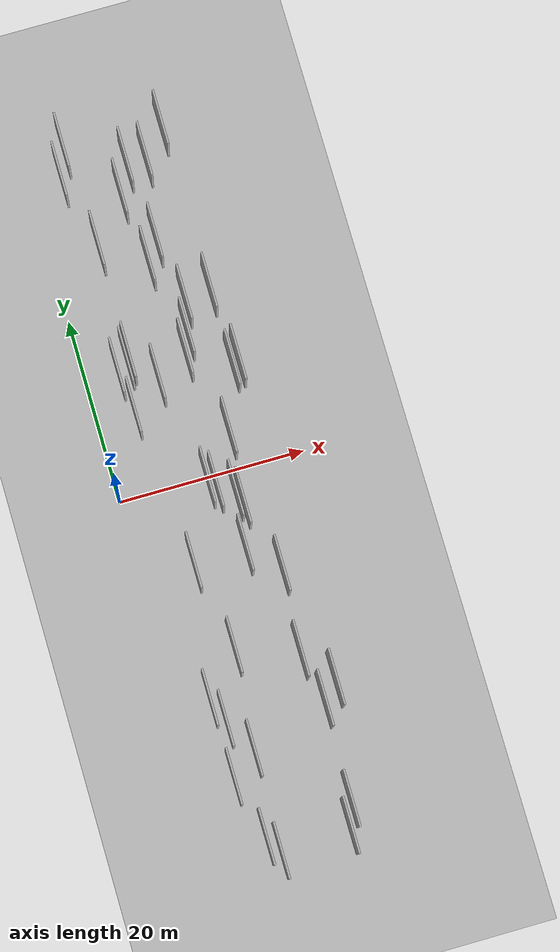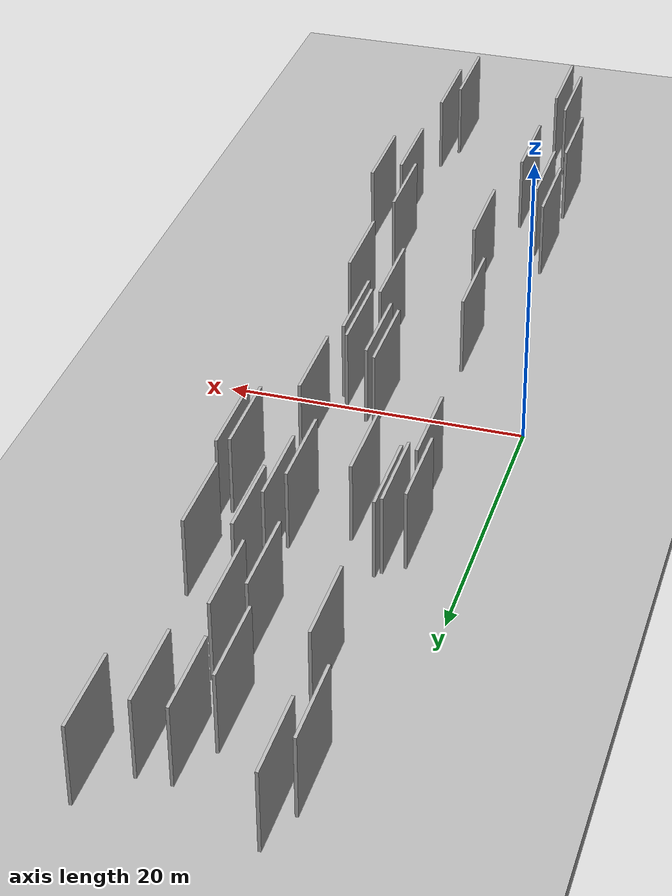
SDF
<?xml version="1.0" encoding="utf-8"?>

<sdf version="1.6">

   <world name="default">

      <gui fullscreen="0">

         <camera name="user_camera">

            <pose>-15 0 4.57585 0 0 0</pose>

            <view_controller>orbit</view_controller>

         </camera>

      </gui>

      <scene>

         <sky>

           <clouds>

             <speed>12</speed>

           </clouds>

         </sky>

         <ambient>0.4 0.4 0.4 1</ambient>

         <background>0.7 0.7 0.7 1</background>

         <shadows>1</shadows>

      </scene>

      <gravity>0 0 -9.8066</gravity>

      <magnetic_field>6e-06 2.3e-05 -4.2e-05</magnetic_field>

      <physics default="0" name="default_physics" type="ode">

         <ode>

            <solver>

               <type>quick</type>

               <iters>10</iters>

               <sor>1.0</sor>

               <use_dynamic_moi_rescaling>0</use_dynamic_moi_rescaling>

            </solver>

            <constraints>

               <cfm>0</cfm>

               <erp>0.2</erp>

               <contact_max_correcting_vel>100</contact_max_correcting_vel>

               <contact_surface_layer>0.001</contact_surface_layer>

            </constraints>

         </ode>

         <max_step_size>0.004</max_step_size>

         <real_time_factor>1</real_time_factor>

         <real_time_update_rate>250</real_time_update_rate>

      </physics>

      <light name="sun" type="directional">

         <cast_shadows>1</cast_shadows>

         <pose>0 0 10 0 0 0</pose>

         <diffuse>0.8 0.8 0.8 1</diffuse>

         <specular>0.2 0.2 0.2 1</specular>

         <attenuation>

            <range>1000</range>

            <constant>0.9</constant>

            <linear>0.01</linear>

            <quadratic>0.001</quadratic>

         </attenuation>

         <direction>-0.5 0.1 -0.9</direction>

      </light>

      <include>

         <name>ground_plane_1</name>

         <uri>model://HANNAS_ground_plane</uri>

         <pose>0 0 0  0 0 0</pose>

      </include>

      <include>

         <name>ground_plane_2</name>

         <uri>model://HANNAS_ground_plane</uri>

         <pose>100 0 0  0 0 0</pose>

      </include>

      <model name="HANNAS_wall_1">

         <static>1</static>

         <pose frame="">4.3245 -24.9638 0.0 0.000000 0.000000 1.570796</pose>

         <link name="link">

            <pose frame="">0 0 3.00 0 0 0</pose>

            <collision name="collision">

               <geometry>

                  <box>

                     <size>6.00 0.2 6.00</size>

                  </box>

               </geometry>

               <max_contacts>10</max_contacts>

               <surface>

                  <contact>

                     <ode/>

                  </contact>

                  <bounce/>

                  <friction>

                     <torsional>

                        <ode/>

                     </torsional>

                     <ode/>

                  </friction>

               </surface>

            </collision>

            <visual name="visual">

               <cast_shadows>0</cast_shadows>

               <geometry>

                  <box>

                     <size>6.00 0.2 6.00</size>

                  </box>

               </geometry>

               <material>

                  <script>

                     <uri>model://HANNAS_wall/materials/scripts</uri>

                     <uri>model://HANNAS_wall/materials/textures</uri>

                     <name>vrc/HANNAS_wall</name>

                  </script>

               </material>

            </visual>

            <self_collide>0</self_collide>

            <enable_wind>0</enable_wind>

            <kinematic>0</kinematic>

         </link>

      </model>

      <model name="HANNAS_wall_2">

         <static>1</static>

         <pose frame="">12.3497 18.5937 0.0 0.000000 0.000000 1.570796</pose>

         <link name="link">

            <pose frame="">0 0 3.00 0 0 0</pose>

            <collision name="collision">

               <geometry>

                  <box>

                     <size>6.00 0.2 6.00</size>

                  </box>

               </geometry>

               <max_contacts>10</max_contacts>

               <surface>

                  <contact>

                     <ode/>

                  </contact>

                  <bounce/>

                  <friction>

                     <torsional>

                        <ode/>

                     </torsional>

                     <ode/>

                  </friction>

               </surface>

            </collision>

            <visual name="visual">

               <cast_shadows>0</cast_shadows>

               <geometry>

                  <box>

                     <size>6.00 0.2 6.00</size>

                  </box>

               </geometry>

               <material>

                  <script>

                     <uri>model://HANNAS_wall/materials/scripts</uri>

                     <uri>model://HANNAS_wall/materials/textures</uri>

                     <name>vrc/HANNAS_wall</name>

                  </script>

               </material>

            </visual>

            <self_collide>0</self_collide>

            <enable_wind>0</enable_wind>

            <kinematic>0</kinematic>

         </link>

      </model>

      <model name="HANNAS_wall_3">

         <static>1</static>

         <pose frame="">11.8341 -2.5435 0.0 0.000000 0.000000 1.570796</pose>

         <link name="link">

            <pose frame="">0 0 3.00 0 0 0</pose>

            <collision name="collision">

               <geometry>

                  <box>

                     <size>6.00 0.2 6.00</size>

                  </box>

               </geometry>

               <max_contacts>10</max_contacts>

               <surface>

                  <contact>

                     <ode/>

                  </contact>

                  <bounce/>

                  <friction>

                     <torsional>

                        <ode/>

                     </torsional>

                     <ode/>

                  </friction>

               </surface>

            </collision>

            <visual name="visual">

               <cast_shadows>0</cast_shadows>

               <geometry>

                  <box>

                     <size>6.00 0.2 6.00</size>

                  </box>

               </geometry>

               <material>

                  <script>

                     <uri>model://HANNAS_wall/materials/scripts</uri>

                     <uri>model://HANNAS_wall/materials/textures</uri>

                     <name>vrc/HANNAS_wall</name>

                  </script>

               </material>

            </visual>

            <self_collide>0</self_collide>

            <enable_wind>0</enable_wind>

            <kinematic>0</kinematic>

         </link>

      </model>

      <model name="HANNAS_wall_4">

         <static>1</static>

         <pose frame="">7.4011 11.3173 0.0 0.000000 0.000000 1.570796</pose>

         <link name="link">

            <pose frame="">0 0 3.00 0 0 0</pose>

            <collision name="collision">

               <geometry>

                  <box>

                     <size>6.00 0.2 6.00</size>

                  </box>

               </geometry>

               <max_contacts>10</max_contacts>

               <surface>

                  <contact>

                     <ode/>

                  </contact>

                  <bounce/>

                  <friction>

                     <torsional>

                        <ode/>

                     </torsional>

                     <ode/>

                  </friction>

               </surface>

            </collision>

            <visual name="visual">

               <cast_shadows>0</cast_shadows>

               <geometry>

                  <box>

                     <size>6.00 0.2 6.00</size>

                  </box>

               </geometry>

               <material>

                  <script>

                     <uri>model://HANNAS_wall/materials/scripts</uri>

                     <uri>model://HANNAS_wall/materials/textures</uri>

                     <name>vrc/HANNAS_wall</name>

                  </script>

               </material>

            </visual>

            <self_collide>0</self_collide>

            <enable_wind>0</enable_wind>

            <kinematic>0</kinematic>

         </link>

      </model>

      <model name="HANNAS_wall_5">

         <static>1</static>

         <pose frame="">10.8684 13.0981 0.0 0.000000 0.000000 1.570796</pose>

         <link name="link">

            <pose frame="">0 0 3.00 0 0 0</pose>

            <collision name="collision">

               <geometry>

                  <box>

                     <size>6.00 0.2 6.00</size>

                  </box>

               </geometry>

               <max_contacts>10</max_contacts>

               <surface>

                  <contact>

                     <ode/>

                  </contact>

                  <bounce/>

                  <friction>

                     <torsional>

                        <ode/>

                     </torsional>

                     <ode/>

                  </friction>

               </surface>

            </collision>

            <visual name="visual">

               <cast_shadows>0</cast_shadows>

               <geometry>

                  <box>

                     <size>6.00 0.2 6.00</size>

                  </box>

               </geometry>

               <material>

                  <script>

                     <uri>model://HANNAS_wall/materials/scripts</uri>

                     <uri>model://HANNAS_wall/materials/textures</uri>

                     <name>vrc/HANNAS_wall</name>

                  </script>

               </material>

            </visual>

            <self_collide>0</self_collide>

            <enable_wind>0</enable_wind>

            <kinematic>0</kinematic>

         </link>

      </model>

      <model name="HANNAS_wall_6">

         <static>1</static>

         <pose frame="">4.7483 13.9222 0.0 0.000000 0.000000 1.570796</pose>

         <link name="link">

            <pose frame="">0 0 3.00 0 0 0</pose>

            <collision name="collision">

               <geometry>

                  <box>

                     <size>6.00 0.2 6.00</size>

                  </box>

               </geometry>

               <max_contacts>10</max_contacts>

               <surface>

                  <contact>

                     <ode/>

                  </contact>

                  <bounce/>

                  <friction>

                     <torsional>

                        <ode/>

                     </torsional>

                     <ode/>

                  </friction>

               </surface>

            </collision>

            <visual name="visual">

               <cast_shadows>0</cast_shadows>

               <geometry>

                  <box>

                     <size>6.00 0.2 6.00</size>

                  </box>

               </geometry>

               <material>

                  <script>

                     <uri>model://HANNAS_wall/materials/scripts</uri>

                     <uri>model://HANNAS_wall/materials/textures</uri>

                     <name>vrc/HANNAS_wall</name>

                  </script>

               </material>

            </visual>

            <self_collide>0</self_collide>

            <enable_wind>0</enable_wind>

            <kinematic>0</kinematic>

         </link>

      </model>

      <model name="HANNAS_wall_7">

         <static>1</static>

         <pose frame="">12.5244 34.4096 0.0 0.000000 0.000000 1.570796</pose>

         <link name="link">

            <pose frame="">0 0 3.00 0 0 0</pose>

            <collision name="collision">

               <geometry>

                  <box>

                     <size>6.00 0.2 6.00</size>

                  </box>

               </geometry>

               <max_contacts>10</max_contacts>

               <surface>

                  <contact>

                     <ode/>

                  </contact>

                  <bounce/>

                  <friction>

                     <torsional>

                        <ode/>

                     </torsional>

                     <ode/>

                  </friction>

               </surface>

            </collision>

            <visual name="visual">

               <cast_shadows>0</cast_shadows>

               <geometry>

                  <box>

                     <size>6.00 0.2 6.00</size>

                  </box>

               </geometry>

               <material>

                  <script>

                     <uri>model://HANNAS_wall/materials/scripts</uri>

                     <uri>model://HANNAS_wall/materials/textures</uri>

                     <name>vrc/HANNAS_wall</name>

                  </script>

               </material>

            </visual>

            <self_collide>0</self_collide>

            <enable_wind>0</enable_wind>

            <kinematic>0</kinematic>

         </link>

      </model>

      <model name="HANNAS_wall_8">

         <static>1</static>

         <pose frame="">14.6035 -25.7520 0.0 0.000000 0.000000 1.570796</pose>

         <link name="link">

            <pose frame="">0 0 3.00 0 0 0</pose>

            <collision name="collision">

               <geometry>

                  <box>

                     <size>6.00 0.2 6.00</size>

                  </box>

               </geometry>

               <max_contacts>10</max_contacts>

               <surface>

                  <contact>

                     <ode/>

                  </contact>

                  <bounce/>

                  <friction>

                     <torsional>

                        <ode/>

                     </torsional>

                     <ode/>

                  </friction>

               </surface>

            </collision>

            <visual name="visual">

               <cast_shadows>0</cast_shadows>

               <geometry>

                  <box>

                     <size>6.00 0.2 6.00</size>

                  </box>

               </geometry>

               <material>

                  <script>

                     <uri>model://HANNAS_wall/materials/scripts</uri>

                     <uri>model://HANNAS_wall/materials/textures</uri>

                     <name>vrc/HANNAS_wall</name>

                  </script>

               </material>

            </visual>

            <self_collide>0</self_collide>

            <enable_wind>0</enable_wind>

            <kinematic>0</kinematic>

         </link>

      </model>

      <model name="HANNAS_wall_9">

         <static>1</static>

         <pose frame="">16.2894 -24.0302 0.0 0.000000 0.000000 1.570796</pose>

         <link name="link">

            <pose frame="">0 0 3.00 0 0 0</pose>

            <collision name="collision">

               <geometry>

                  <box>

                     <size>6.00 0.2 6.00</size>

                  </box>

               </geometry>

               <max_contacts>10</max_contacts>

               <surface>

                  <contact>

                     <ode/>

                  </contact>

                  <bounce/>

                  <friction>

                     <torsional>

                        <ode/>

                     </torsional>

                     <ode/>

                  </friction>

               </surface>

            </collision>

            <visual name="visual">

               <cast_shadows>0</cast_shadows>

               <geometry>

                  <box>

                     <size>6.00 0.2 6.00</size>

                  </box>

               </geometry>

               <material>

                  <script>

                     <uri>model://HANNAS_wall/materials/scripts</uri>

                     <uri>model://HANNAS_wall/materials/textures</uri>

                     <name>vrc/HANNAS_wall</name>

                  </script>

               </material>

            </visual>

            <self_collide>0</self_collide>

            <enable_wind>0</enable_wind>

            <kinematic>0</kinematic>

         </link>

      </model>

      <model name="HANNAS_wall_10">

         <static>1</static>

         <pose frame="">6.0475 -39.3182 0.0 0.000000 0.000000 1.570796</pose>

         <link name="link">

            <pose frame="">0 0 3.00 0 0 0</pose>

            <collision name="collision">

               <geometry>

                  <box>

                     <size>6.00 0.2 6.00</size>

                  </box>

               </geometry>

               <max_contacts>10</max_contacts>

               <surface>

                  <contact>

                     <ode/>

                  </contact>

                  <bounce/>

                  <friction>

                     <torsional>

                        <ode/>

                     </torsional>

                     <ode/>

                  </friction>

               </surface>

            </collision>

            <visual name="visual">

               <cast_shadows>0</cast_shadows>

               <geometry>

                  <box>

                     <size>6.00 0.2 6.00</size>

                  </box>

               </geometry>

               <material>

                  <script>

                     <uri>model://HANNAS_wall/materials/scripts</uri>

                     <uri>model://HANNAS_wall/materials/textures</uri>

                     <name>vrc/HANNAS_wall</name>

                  </script>

               </material>

            </visual>

            <self_collide>0</self_collide>

            <enable_wind>0</enable_wind>

            <kinematic>0</kinematic>

         </link>

      </model>

      <model name="HANNAS_wall_11">

         <static>1</static>

         <pose frame="">7.2088 -18.0423 0.0 0.000000 0.000000 1.570796</pose>

         <link name="link">

            <pose frame="">0 0 3.00 0 0 0</pose>

            <collision name="collision">

               <geometry>

                  <box>

                     <size>6.00 0.2 6.00</size>

                  </box>

               </geometry>

               <max_contacts>10</max_contacts>

               <surface>

                  <contact>

                     <ode/>

                  </contact>

                  <bounce/>

                  <friction>

                     <torsional>

                        <ode/>

                     </torsional>

                     <ode/>

                  </friction>

               </surface>

            </collision>

            <visual name="visual">

               <cast_shadows>0</cast_shadows>

               <geometry>

                  <box>

                     <size>6.00 0.2 6.00</size>

                  </box>

               </geometry>

               <material>

                  <script>

                     <uri>model://HANNAS_wall/materials/scripts</uri>

                     <uri>model://HANNAS_wall/materials/textures</uri>

                     <name>vrc/HANNAS_wall</name>

                  </script>

               </material>

            </visual>

            <self_collide>0</self_collide>

            <enable_wind>0</enable_wind>

            <kinematic>0</kinematic>

         </link>

      </model>

      <model name="HANNAS_wall_12">

         <static>1</static>

         <pose frame="">11.2103 -8.2758 0.0 0.000000 0.000000 1.570796</pose>

         <link name="link">

            <pose frame="">0 0 3.00 0 0 0</pose>

            <collision name="collision">

               <geometry>

                  <box>

                     <size>6.00 0.2 6.00</size>

                  </box>

               </geometry>

               <max_contacts>10</max_contacts>

               <surface>

                  <contact>

                     <ode/>

                  </contact>

                  <bounce/>

                  <friction>

                     <torsional>

                        <ode/>

                     </torsional>

                     <ode/>

                  </friction>

               </surface>

            </collision>

            <visual name="visual">

               <cast_shadows>0</cast_shadows>

               <geometry>

                  <box>

                     <size>6.00 0.2 6.00</size>

                  </box>

               </geometry>

               <material>

                  <script>

                     <uri>model://HANNAS_wall/materials/scripts</uri>

                     <uri>model://HANNAS_wall/materials/textures</uri>

                     <name>vrc/HANNAS_wall</name>

                  </script>

               </material>

            </visual>

            <self_collide>0</self_collide>

            <enable_wind>0</enable_wind>

            <kinematic>0</kinematic>

         </link>

      </model>

      <model name="HANNAS_wall_13">

         <static>1</static>

         <pose frame="">5.6096 -8.5747 0.0 0.000000 0.000000 1.570796</pose>

         <link name="link">

            <pose frame="">0 0 3.00 0 0 0</pose>

            <collision name="collision">

               <geometry>

                  <box>

                     <size>6.00 0.2 6.00</size>

                  </box>

               </geometry>

               <max_contacts>10</max_contacts>

               <surface>

                  <contact>

                     <ode/>

                  </contact>

                  <bounce/>

                  <friction>

                     <torsional>

                        <ode/>

                     </torsional>

                     <ode/>

                  </friction>

               </surface>

            </collision>

            <visual name="visual">

               <cast_shadows>0</cast_shadows>

               <geometry>

                  <box>

                     <size>6.00 0.2 6.00</size>

                  </box>

               </geometry>

               <material>

                  <script>

                     <uri>model://HANNAS_wall/materials/scripts</uri>

                     <uri>model://HANNAS_wall/materials/textures</uri>

                     <name>vrc/HANNAS_wall</name>

                  </script>

               </material>

            </visual>

            <self_collide>0</self_collide>

            <enable_wind>0</enable_wind>

            <kinematic>0</kinematic>

         </link>

      </model>

      <model name="HANNAS_wall_14">

         <static>1</static>

         <pose frame="">5.1643 26.5844 0.0 0.000000 0.000000 1.570796</pose>

         <link name="link">

            <pose frame="">0 0 3.00 0 0 0</pose>

            <collision name="collision">

               <geometry>

                  <box>

                     <size>6.00 0.2 6.00</size>

                  </box>

               </geometry>

               <max_contacts>10</max_contacts>

               <surface>

                  <contact>

                     <ode/>

                  </contact>

                  <bounce/>

                  <friction>

                     <torsional>

                        <ode/>

                     </torsional>

                     <ode/>

                  </friction>

               </surface>

            </collision>

            <visual name="visual">

               <cast_shadows>0</cast_shadows>

               <geometry>

                  <box>

                     <size>6.00 0.2 6.00</size>

                  </box>

               </geometry>

               <material>

                  <script>

                     <uri>model://HANNAS_wall/materials/scripts</uri>

                     <uri>model://HANNAS_wall/materials/textures</uri>

                     <name>vrc/HANNAS_wall</name>

                  </script>

               </material>

            </visual>

            <self_collide>0</self_collide>

            <enable_wind>0</enable_wind>

            <kinematic>0</kinematic>

         </link>

      </model>

      <model name="HANNAS_wall_15">

         <static>1</static>

         <pose frame="">5.0965 14.3637 0.0 0.000000 0.000000 1.570796</pose>

         <link name="link">

            <pose frame="">0 0 3.00 0 0 0</pose>

            <collision name="collision">

               <geometry>

                  <box>

                     <size>6.00 0.2 6.00</size>

                  </box>

               </geometry>

               <max_contacts>10</max_contacts>

               <surface>

                  <contact>

                     <ode/>

                  </contact>

                  <bounce/>

                  <friction>

                     <torsional>

                        <ode/>

                     </torsional>

                     <ode/>

                  </friction>

               </surface>

            </collision>

            <visual name="visual">

               <cast_shadows>0</cast_shadows>

               <geometry>

                  <box>

                     <size>6.00 0.2 6.00</size>

                  </box>

               </geometry>

               <material>

                  <script>

                     <uri>model://HANNAS_wall/materials/scripts</uri>

                     <uri>model://HANNAS_wall/materials/textures</uri>

                     <name>vrc/HANNAS_wall</name>

                  </script>

               </material>

            </visual>

            <self_collide>0</self_collide>

            <enable_wind>0</enable_wind>

            <kinematic>0</kinematic>

         </link>

      </model>

      <model name="HANNAS_wall_16">

         <static>1</static>

         <pose frame="">13.5013 -38.8088 0.0 0.000000 0.000000 1.570796</pose>

         <link name="link">

            <pose frame="">0 0 3.00 0 0 0</pose>

            <collision name="collision">

               <geometry>

                  <box>

                     <size>6.00 0.2 6.00</size>

                  </box>

               </geometry>

               <max_contacts>10</max_contacts>

               <surface>

                  <contact>

                     <ode/>

                  </contact>

                  <bounce/>

                  <friction>

                     <torsional>

                        <ode/>

                     </torsional>

                     <ode/>

                  </friction>

               </surface>

            </collision>

            <visual name="visual">

               <cast_shadows>0</cast_shadows>

               <geometry>

                  <box>

                     <size>6.00 0.2 6.00</size>

                  </box>

               </geometry>

               <material>

                  <script>

                     <uri>model://HANNAS_wall/materials/scripts</uri>

                     <uri>model://HANNAS_wall/materials/textures</uri>

                     <name>vrc/HANNAS_wall</name>

                  </script>

               </material>

            </visual>

            <self_collide>0</self_collide>

            <enable_wind>0</enable_wind>

            <kinematic>0</kinematic>

         </link>

      </model>

      <model name="HANNAS_wall_17">

         <static>1</static>

         <pose frame="">4.9915 -37.5476 0.0 0.000000 0.000000 1.570796</pose>

         <link name="link">

            <pose frame="">0 0 3.00 0 0 0</pose>

            <collision name="collision">

               <geometry>

                  <box>

                     <size>6.00 0.2 6.00</size>

                  </box>

               </geometry>

               <max_contacts>10</max_contacts>

               <surface>

                  <contact>

                     <ode/>

                  </contact>

                  <bounce/>

                  <friction>

                     <torsional>

                        <ode/>

                     </torsional>

                     <ode/>

                  </friction>

               </surface>

            </collision>

            <visual name="visual">

               <cast_shadows>0</cast_shadows>

               <geometry>

                  <box>

                     <size>6.00 0.2 6.00</size>

                  </box>

               </geometry>

               <material>

                  <script>

                     <uri>model://HANNAS_wall/materials/scripts</uri>

                     <uri>model://HANNAS_wall/materials/textures</uri>

                     <name>vrc/HANNAS_wall</name>

                  </script>

               </material>

            </visual>

            <self_collide>0</self_collide>

            <enable_wind>0</enable_wind>

            <kinematic>0</kinematic>

         </link>

      </model>

      <model name="HANNAS_wall_18">

         <static>1</static>

         <pose frame="">14.3217 -36.2283 0.0 0.000000 0.000000 1.570796</pose>

         <link name="link">

            <pose frame="">0 0 3.00 0 0 0</pose>

            <collision name="collision">

               <geometry>

                  <box>

                     <size>6.00 0.2 6.00</size>

                  </box>

               </geometry>

               <max_contacts>10</max_contacts>

               <surface>

                  <contact>

                     <ode/>

                  </contact>

                  <bounce/>

                  <friction>

                     <torsional>

                        <ode/>

                     </torsional>

                     <ode/>

                  </friction>

               </surface>

            </collision>

            <visual name="visual">

               <cast_shadows>0</cast_shadows>

               <geometry>

                  <box>

                     <size>6.00 0.2 6.00</size>

                  </box>

               </geometry>

               <material>

                  <script>

                     <uri>model://HANNAS_wall/materials/scripts</uri>

                     <uri>model://HANNAS_wall/materials/textures</uri>

                     <name>vrc/HANNAS_wall</name>

                  </script>

               </material>

            </visual>

            <self_collide>0</self_collide>

            <enable_wind>0</enable_wind>

            <kinematic>0</kinematic>

         </link>

      </model>

      <model name="HANNAS_wall_19">

         <static>1</static>

         <pose frame="">12.3265 -3.5174 0.0 0.000000 0.000000 1.570796</pose>

         <link name="link">

            <pose frame="">0 0 3.00 0 0 0</pose>

            <collision name="collision">

               <geometry>

                  <box>

                     <size>6.00 0.2 6.00</size>

                  </box>

               </geometry>

               <max_contacts>10</max_contacts>

               <surface>

                  <contact>

                     <ode/>

                  </contact>

                  <bounce/>

                  <friction>

                     <torsional>

                        <ode/>

                     </torsional>

                     <ode/>

                  </friction>

               </surface>

            </collision>

            <visual name="visual">

               <cast_shadows>0</cast_shadows>

               <geometry>

                  <box>

                     <size>6.00 0.2 6.00</size>

                  </box>

               </geometry>

               <material>

                  <script>

                     <uri>model://HANNAS_wall/materials/scripts</uri>

                     <uri>model://HANNAS_wall/materials/textures</uri>

                     <name>vrc/HANNAS_wall</name>

                  </script>

               </material>

            </visual>

            <self_collide>0</self_collide>

            <enable_wind>0</enable_wind>

            <kinematic>0</kinematic>

         </link>

      </model>

      <model name="HANNAS_wall_20">

         <static>1</static>

         <pose frame="">14.2419 -11.3249 0.0 0.000000 0.000000 1.570796</pose>

         <link name="link">

            <pose frame="">0 0 3.00 0 0 0</pose>

            <collision name="collision">

               <geometry>

                  <box>

                     <size>6.00 0.2 6.00</size>

                  </box>

               </geometry>

               <max_contacts>10</max_contacts>

               <surface>

                  <contact>

                     <ode/>

                  </contact>

                  <bounce/>

                  <friction>

                     <torsional>

                        <ode/>

                     </torsional>

                     <ode/>

                  </friction>

               </surface>

            </collision>

            <visual name="visual">

               <cast_shadows>0</cast_shadows>

               <geometry>

                  <box>

                     <size>6.00 0.2 6.00</size>

                  </box>

               </geometry>

               <material>

                  <script>

                     <uri>model://HANNAS_wall/materials/scripts</uri>

                     <uri>model://HANNAS_wall/materials/textures</uri>

                     <name>vrc/HANNAS_wall</name>

                  </script>

               </material>

            </visual>

            <self_collide>0</self_collide>

            <enable_wind>0</enable_wind>

            <kinematic>0</kinematic>

         </link>

      </model>

      <model name="HANNAS_wall_21">

         <static>1</static>

         <pose frame="">3.3547 -22.5129 0.0 0.000000 0.000000 1.570796</pose>

         <link name="link">

            <pose frame="">0 0 3.00 0 0 0</pose>

            <collision name="collision">

               <geometry>

                  <box>

                     <size>6.00 0.2 6.00</size>

                  </box>

               </geometry>

               <max_contacts>10</max_contacts>

               <surface>

                  <contact>

                     <ode/>

                  </contact>

                  <bounce/>

                  <friction>

                     <torsional>

                        <ode/>

                     </torsional>

                     <ode/>

                  </friction>

               </surface>

            </collision>

            <visual name="visual">

               <cast_shadows>0</cast_shadows>

               <geometry>

                  <box>

                     <size>6.00 0.2 6.00</size>

                  </box>

               </geometry>

               <material>

                  <script>

                     <uri>model://HANNAS_wall/materials/scripts</uri>

                     <uri>model://HANNAS_wall/materials/textures</uri>

                     <name>vrc/HANNAS_wall</name>

                  </script>

               </material>

            </visual>

            <self_collide>0</self_collide>

            <enable_wind>0</enable_wind>

            <kinematic>0</kinematic>

         </link>

      </model>

      <model name="HANNAS_wall_22">

         <static>1</static>

         <pose frame="">12.9528 3.9137 0.0 0.000000 0.000000 1.570796</pose>

         <link name="link">

            <pose frame="">0 0 3.00 0 0 0</pose>

            <collision name="collision">

               <geometry>

                  <box>

                     <size>6.00 0.2 6.00</size>

                  </box>

               </geometry>

               <max_contacts>10</max_contacts>

               <surface>

                  <contact>

                     <ode/>

                  </contact>

                  <bounce/>

                  <friction>

                     <torsional>

                        <ode/>

                     </torsional>

                     <ode/>

                  </friction>

               </surface>

            </collision>

            <visual name="visual">

               <cast_shadows>0</cast_shadows>

               <geometry>

                  <box>

                     <size>6.00 0.2 6.00</size>

                  </box>

               </geometry>

               <material>

                  <script>

                     <uri>model://HANNAS_wall/materials/scripts</uri>

                     <uri>model://HANNAS_wall/materials/textures</uri>

                     <name>vrc/HANNAS_wall</name>

                  </script>

               </material>

            </visual>

            <self_collide>0</self_collide>

            <enable_wind>0</enable_wind>

            <kinematic>0</kinematic>

         </link>

      </model>

      <model name="HANNAS_wall_23">

         <static>1</static>

         <pose frame="">15.1757 19.1069 0.0 0.000000 0.000000 1.570796</pose>

         <link name="link">

            <pose frame="">0 0 3.00 0 0 0</pose>

            <collision name="collision">

               <geometry>

                  <box>

                     <size>6.00 0.2 6.00</size>

                  </box>

               </geometry>

               <max_contacts>10</max_contacts>

               <surface>

                  <contact>

                     <ode/>

                  </contact>

                  <bounce/>

                  <friction>

                     <torsional>

                        <ode/>

                     </torsional>

                     <ode/>

                  </friction>

               </surface>

            </collision>

            <visual name="visual">

               <cast_shadows>0</cast_shadows>

               <geometry>

                  <box>

                     <size>6.00 0.2 6.00</size>

                  </box>

               </geometry>

               <material>

                  <script>

                     <uri>model://HANNAS_wall/materials/scripts</uri>

                     <uri>model://HANNAS_wall/materials/textures</uri>

                     <name>vrc/HANNAS_wall</name>

                  </script>

               </material>

            </visual>

            <self_collide>0</self_collide>

            <enable_wind>0</enable_wind>

            <kinematic>0</kinematic>

         </link>

      </model>

      <model name="HANNAS_wall_24">

         <static>1</static>

         <pose frame="">4.4452 37.7147 0.0 0.000000 0.000000 1.570796</pose>

         <link name="link">

            <pose frame="">0 0 3.00 0 0 0</pose>

            <collision name="collision">

               <geometry>

                  <box>

                     <size>6.00 0.2 6.00</size>

                  </box>

               </geometry>

               <max_contacts>10</max_contacts>

               <surface>

                  <contact>

                     <ode/>

                  </contact>

                  <bounce/>

                  <friction>

                     <torsional>

                        <ode/>

                     </torsional>

                     <ode/>

                  </friction>

               </surface>

            </collision>

            <visual name="visual">

               <cast_shadows>0</cast_shadows>

               <geometry>

                  <box>

                     <size>6.00 0.2 6.00</size>

                  </box>

               </geometry>

               <material>

                  <script>

                     <uri>model://HANNAS_wall/materials/scripts</uri>

                     <uri>model://HANNAS_wall/materials/textures</uri>

                     <name>vrc/HANNAS_wall</name>

                  </script>

               </material>

            </visual>

            <self_collide>0</self_collide>

            <enable_wind>0</enable_wind>

            <kinematic>0</kinematic>

         </link>

      </model>

      <model name="HANNAS_wall_25">

         <static>1</static>

         <pose frame="">3.4861 -30.8448 0.0 0.000000 0.000000 1.570796</pose>

         <link name="link">

            <pose frame="">0 0 3.00 0 0 0</pose>

            <collision name="collision">

               <geometry>

                  <box>

                     <size>6.00 0.2 6.00</size>

                  </box>

               </geometry>

               <max_contacts>10</max_contacts>

               <surface>

                  <contact>

                     <ode/>

                  </contact>

                  <bounce/>

                  <friction>

                     <torsional>

                        <ode/>

                     </torsional>

                     <ode/>

                  </friction>

               </surface>

            </collision>

            <visual name="visual">

               <cast_shadows>0</cast_shadows>

               <geometry>

                  <box>

                     <size>6.00 0.2 6.00</size>

                  </box>

               </geometry>

               <material>

                  <script>

                     <uri>model://HANNAS_wall/materials/scripts</uri>

                     <uri>model://HANNAS_wall/materials/textures</uri>

                     <name>vrc/HANNAS_wall</name>

                  </script>

               </material>

            </visual>

            <self_collide>0</self_collide>

            <enable_wind>0</enable_wind>

            <kinematic>0</kinematic>

         </link>

      </model>

      <model name="HANNAS_wall_26">

         <static>1</static>

         <pose frame="">4.0728 8.6260 0.0 0.000000 0.000000 1.570796</pose>

         <link name="link">

            <pose frame="">0 0 3.00 0 0 0</pose>

            <collision name="collision">

               <geometry>

                  <box>

                     <size>6.00 0.2 6.00</size>

                  </box>

               </geometry>

               <max_contacts>10</max_contacts>

               <surface>

                  <contact>

                     <ode/>

                  </contact>

                  <bounce/>

                  <friction>

                     <torsional>

                        <ode/>

                     </torsional>

                     <ode/>

                  </friction>

               </surface>

            </collision>

            <visual name="visual">

               <cast_shadows>0</cast_shadows>

               <geometry>

                  <box>

                     <size>6.00 0.2 6.00</size>

                  </box>

               </geometry>

               <material>

                  <script>

                     <uri>model://HANNAS_wall/materials/scripts</uri>

                     <uri>model://HANNAS_wall/materials/textures</uri>

                     <name>vrc/HANNAS_wall</name>

                  </script>

               </material>

            </visual>

            <self_collide>0</self_collide>

            <enable_wind>0</enable_wind>

            <kinematic>0</kinematic>

         </link>

      </model>

      <model name="HANNAS_wall_27">

         <static>1</static>

         <pose frame="">6.2685 -28.6391 0.0 0.000000 0.000000 1.570796</pose>

         <link name="link">

            <pose frame="">0 0 3.00 0 0 0</pose>

            <collision name="collision">

               <geometry>

                  <box>

                     <size>6.00 0.2 6.00</size>

                  </box>

               </geometry>

               <max_contacts>10</max_contacts>

               <surface>

                  <contact>

                     <ode/>

                  </contact>

                  <bounce/>

                  <friction>

                     <torsional>

                        <ode/>

                     </torsional>

                     <ode/>

                  </friction>

               </surface>

            </collision>

            <visual name="visual">

               <cast_shadows>0</cast_shadows>

               <geometry>

                  <box>

                     <size>6.00 0.2 6.00</size>

                  </box>

               </geometry>

               <material>

                  <script>

                     <uri>model://HANNAS_wall/materials/scripts</uri>

                     <uri>model://HANNAS_wall/materials/textures</uri>

                     <name>vrc/HANNAS_wall</name>

                  </script>

               </material>

            </visual>

            <self_collide>0</self_collide>

            <enable_wind>0</enable_wind>

            <kinematic>0</kinematic>

         </link>

      </model>

      <model name="HANNAS_wall_28">

         <static>1</static>

         <pose frame="">10.4224 34.4241 0.0 0.000000 0.000000 1.570796</pose>

         <link name="link">

            <pose frame="">0 0 3.00 0 0 0</pose>

            <collision name="collision">

               <geometry>

                  <box>

                     <size>6.00 0.2 6.00</size>

                  </box>

               </geometry>

               <max_contacts>10</max_contacts>

               <surface>

                  <contact>

                     <ode/>

                  </contact>

                  <bounce/>

                  <friction>

                     <torsional>

                        <ode/>

                     </torsional>

                     <ode/>

                  </friction>

               </surface>

            </collision>

            <visual name="visual">

               <cast_shadows>0</cast_shadows>

               <geometry>

                  <box>

                     <size>6.00 0.2 6.00</size>

                  </box>

               </geometry>

               <material>

                  <script>

                     <uri>model://HANNAS_wall/materials/scripts</uri>

                     <uri>model://HANNAS_wall/materials/textures</uri>

                     <name>vrc/HANNAS_wall</name>

                  </script>

               </material>

            </visual>

            <self_collide>0</self_collide>

            <enable_wind>0</enable_wind>

            <kinematic>0</kinematic>

         </link>

      </model>

      <model name="HANNAS_wall_29">

         <static>1</static>

         <pose frame="">11.6366 15.1914 0.0 0.000000 0.000000 1.570796</pose>

         <link name="link">

            <pose frame="">0 0 3.00 0 0 0</pose>

            <collision name="collision">

               <geometry>

                  <box>

                     <size>6.00 0.2 6.00</size>

                  </box>

               </geometry>

               <max_contacts>10</max_contacts>

               <surface>

                  <contact>

                     <ode/>

                  </contact>

                  <bounce/>

                  <friction>

                     <torsional>

                        <ode/>

                     </torsional>

                     <ode/>

                  </friction>

               </surface>

            </collision>

            <visual name="visual">

               <cast_shadows>0</cast_shadows>

               <geometry>

                  <box>

                     <size>6.00 0.2 6.00</size>

                  </box>

               </geometry>

               <material>

                  <script>

                     <uri>model://HANNAS_wall/materials/scripts</uri>

                     <uri>model://HANNAS_wall/materials/textures</uri>

                     <name>vrc/HANNAS_wall</name>

                  </script>

               </material>

            </visual>

            <self_collide>0</self_collide>

            <enable_wind>0</enable_wind>

            <kinematic>0</kinematic>

         </link>

      </model>

      <model name="HANNAS_wall_30">

         <static>1</static>

         <pose frame="">3.5231 13.0692 0.0 0.000000 0.000000 1.570796</pose>

         <link name="link">

            <pose frame="">0 0 3.00 0 0 0</pose>

            <collision name="collision">

               <geometry>

                  <box>

                     <size>6.00 0.2 6.00</size>

                  </box>

               </geometry>

               <max_contacts>10</max_contacts>

               <surface>

                  <contact>

                     <ode/>

                  </contact>

                  <bounce/>

                  <friction>

                     <torsional>

                        <ode/>

                     </torsional>

                     <ode/>

                  </friction>

               </surface>

            </collision>

            <visual name="visual">

               <cast_shadows>0</cast_shadows>

               <geometry>

                  <box>

                     <size>6.00 0.2 6.00</size>

                  </box>

               </geometry>

               <material>

                  <script>

                     <uri>model://HANNAS_wall/materials/scripts</uri>

                     <uri>model://HANNAS_wall/materials/textures</uri>

                     <name>vrc/HANNAS_wall</name>

                  </script>

               </material>

            </visual>

            <self_collide>0</self_collide>

            <enable_wind>0</enable_wind>

            <kinematic>0</kinematic>

         </link>

      </model>

      <model name="HANNAS_wall_31">

         <static>1</static>

         <pose frame="">10.1016 -1.1360 0.0 0.000000 0.000000 1.570796</pose>

         <link name="link">

            <pose frame="">0 0 3.00 0 0 0</pose>

            <collision name="collision">

               <geometry>

                  <box>

                     <size>6.00 0.2 6.00</size>

                  </box>

               </geometry>

               <max_contacts>10</max_contacts>

               <surface>

                  <contact>

                     <ode/>

                  </contact>

                  <bounce/>

                  <friction>

                     <torsional>

                        <ode/>

                     </torsional>

                     <ode/>

                  </friction>

               </surface>

            </collision>

            <visual name="visual">

               <cast_shadows>0</cast_shadows>

               <geometry>

                  <box>

                     <size>6.00 0.2 6.00</size>

                  </box>

               </geometry>

               <material>

                  <script>

                     <uri>model://HANNAS_wall/materials/scripts</uri>

                     <uri>model://HANNAS_wall/materials/textures</uri>

                     <name>vrc/HANNAS_wall</name>

                  </script>

               </material>

            </visual>

            <self_collide>0</self_collide>

            <enable_wind>0</enable_wind>

            <kinematic>0</kinematic>

         </link>

      </model>

      <model name="HANNAS_wall_32">

         <static>1</static>

         <pose frame="">15.0637 37.2412 0.0 0.000000 0.000000 1.570796</pose>

         <link name="link">

            <pose frame="">0 0 3.00 0 0 0</pose>

            <collision name="collision">

               <geometry>

                  <box>

                     <size>6.00 0.2 6.00</size>

                  </box>

               </geometry>

               <max_contacts>10</max_contacts>

               <surface>

                  <contact>

                     <ode/>

                  </contact>

                  <bounce/>

                  <friction>

                     <torsional>

                        <ode/>

                     </torsional>

                     <ode/>

                  </friction>

               </surface>

            </collision>

            <visual name="visual">

               <cast_shadows>0</cast_shadows>

               <geometry>

                  <box>

                     <size>6.00 0.2 6.00</size>

                  </box>

               </geometry>

               <material>

                  <script>

                     <uri>model://HANNAS_wall/materials/scripts</uri>

                     <uri>model://HANNAS_wall/materials/textures</uri>

                     <name>vrc/HANNAS_wall</name>

                  </script>

               </material>

            </visual>

            <self_collide>0</self_collide>

            <enable_wind>0</enable_wind>

            <kinematic>0</kinematic>

         </link>

      </model>

      <model name="HANNAS_wall_33">

         <static>1</static>

         <pose frame="">13.6356 -20.2656 0.0 0.000000 0.000000 1.570796</pose>

         <link name="link">

            <pose frame="">0 0 3.00 0 0 0</pose>

            <collision name="collision">

               <geometry>

                  <box>

                     <size>6.00 0.2 6.00</size>

                  </box>

               </geometry>

               <max_contacts>10</max_contacts>

               <surface>

                  <contact>

                     <ode/>

                  </contact>

                  <bounce/>

                  <friction>

                     <torsional>

                        <ode/>

                     </torsional>

                     <ode/>

                  </friction>

               </surface>

            </collision>

            <visual name="visual">

               <cast_shadows>0</cast_shadows>

               <geometry>

                  <box>

                     <size>6.00 0.2 6.00</size>

                  </box>

               </geometry>

               <material>

                  <script>

                     <uri>model://HANNAS_wall/materials/scripts</uri>

                     <uri>model://HANNAS_wall/materials/textures</uri>

                     <name>vrc/HANNAS_wall</name>

                  </script>

               </material>

            </visual>

            <self_collide>0</self_collide>

            <enable_wind>0</enable_wind>

            <kinematic>0</kinematic>

         </link>

      </model>

      <model name="HANNAS_wall_34">

         <static>1</static>

         <pose frame="">11.2067 25.7951 0.0 0.000000 0.000000 1.570796</pose>

         <link name="link">

            <pose frame="">0 0 3.00 0 0 0</pose>

            <collision name="collision">

               <geometry>

                  <box>

                     <size>6.00 0.2 6.00</size>

                  </box>

               </geometry>

               <max_contacts>10</max_contacts>

               <surface>

                  <contact>

                     <ode/>

                  </contact>

                  <bounce/>

                  <friction>

                     <torsional>

                        <ode/>

                     </torsional>

                     <ode/>

                  </friction>

               </surface>

            </collision>

            <visual name="visual">

               <cast_shadows>0</cast_shadows>

               <geometry>

                  <box>

                     <size>6.00 0.2 6.00</size>

                  </box>

               </geometry>

               <material>

                  <script>

                     <uri>model://HANNAS_wall/materials/scripts</uri>

                     <uri>model://HANNAS_wall/materials/textures</uri>

                     <name>vrc/HANNAS_wall</name>

                  </script>

               </material>

            </visual>

            <self_collide>0</self_collide>

            <enable_wind>0</enable_wind>

            <kinematic>0</kinematic>

         </link>

      </model>

      <model name="HANNAS_wall_35">

         <static>1</static>

         <pose frame="">15.9757 11.0054 0.0 0.000000 0.000000 1.570796</pose>

         <link name="link">

            <pose frame="">0 0 3.00 0 0 0</pose>

            <collision name="collision">

               <geometry>

                  <box>

                     <size>6.00 0.2 6.00</size>

                  </box>

               </geometry>

               <max_contacts>10</max_contacts>

               <surface>

                  <contact>

                     <ode/>

                  </contact>

                  <bounce/>

                  <friction>

                     <torsional>

                        <ode/>

                     </torsional>

                     <ode/>

                  </friction>

               </surface>

            </collision>

            <visual name="visual">

               <cast_shadows>0</cast_shadows>

               <geometry>

                  <box>

                     <size>6.00 0.2 6.00</size>

                  </box>

               </geometry>

               <material>

                  <script>

                     <uri>model://HANNAS_wall/materials/scripts</uri>

                     <uri>model://HANNAS_wall/materials/textures</uri>

                     <name>vrc/HANNAS_wall</name>

                  </script>

               </material>

            </visual>

            <self_collide>0</self_collide>

            <enable_wind>0</enable_wind>

            <kinematic>0</kinematic>

         </link>

      </model>

      <model name="HANNAS_wall_36">

         <static>1</static>

         <pose frame="">3.3744 34.7999 0.0 0.000000 0.000000 1.570796</pose>

         <link name="link">

            <pose frame="">0 0 3.00 0 0 0</pose>

            <collision name="collision">

               <geometry>

                  <box>

                     <size>6.00 0.2 6.00</size>

                  </box>

               </geometry>

               <max_contacts>10</max_contacts>

               <surface>

                  <contact>

                     <ode/>

                  </contact>

                  <bounce/>

                  <friction>

                     <torsional>

                        <ode/>

                     </torsional>

                     <ode/>

                  </friction>

               </surface>

            </collision>

            <visual name="visual">

               <cast_shadows>0</cast_shadows>

               <geometry>

                  <box>

                     <size>6.00 0.2 6.00</size>

                  </box>

               </geometry>

               <material>

                  <script>

                     <uri>model://HANNAS_wall/materials/scripts</uri>

                     <uri>model://HANNAS_wall/materials/textures</uri>

                     <name>vrc/HANNAS_wall</name>

                  </script>

               </material>

            </visual>

            <self_collide>0</self_collide>

            <enable_wind>0</enable_wind>

            <kinematic>0</kinematic>

         </link>

      </model>

      <model name="HANNAS_wall_37">

         <static>1</static>

         <pose frame="">9.7825 23.5828 0.0 0.000000 0.000000 1.570796</pose>

         <link name="link">

            <pose frame="">0 0 3.00 0 0 0</pose>

            <collision name="collision">

               <geometry>

                  <box>

                     <size>6.00 0.2 6.00</size>

                  </box>

               </geometry>

               <max_contacts>10</max_contacts>

               <surface>

                  <contact>

                     <ode/>

                  </contact>

                  <bounce/>

                  <friction>

                     <torsional>

                        <ode/>

                     </torsional>

                     <ode/>

                  </friction>

               </surface>

            </collision>

            <visual name="visual">

               <cast_shadows>0</cast_shadows>

               <geometry>

                  <box>

                     <size>6.00 0.2 6.00</size>

                  </box>

               </geometry>

               <material>

                  <script>

                     <uri>model://HANNAS_wall/materials/scripts</uri>

                     <uri>model://HANNAS_wall/materials/textures</uri>

                     <name>vrc/HANNAS_wall</name>

                  </script>

               </material>

            </visual>

            <self_collide>0</self_collide>

            <enable_wind>0</enable_wind>

            <kinematic>0</kinematic>

         </link>

      </model>

      <model name="HANNAS_wall_38">

         <static>1</static>

         <pose frame="">9.3957 -0.4633 0.0 0.000000 0.000000 1.570796</pose>

         <link name="link">

            <pose frame="">0 0 3.00 0 0 0</pose>

            <collision name="collision">

               <geometry>

                  <box>

                     <size>6.00 0.2 6.00</size>

                  </box>

               </geometry>

               <max_contacts>10</max_contacts>

               <surface>

                  <contact>

                     <ode/>

                  </contact>

                  <bounce/>

                  <friction>

                     <torsional>

                        <ode/>

                     </torsional>

                     <ode/>

                  </friction>

               </surface>

            </collision>

            <visual name="visual">

               <cast_shadows>0</cast_shadows>

               <geometry>

                  <box>

                     <size>6.00 0.2 6.00</size>

                  </box>

               </geometry>

               <material>

                  <script>

                     <uri>model://HANNAS_wall/materials/scripts</uri>

                     <uri>model://HANNAS_wall/materials/textures</uri>

                     <name>vrc/HANNAS_wall</name>

                  </script>

               </material>

            </visual>

            <self_collide>0</self_collide>

            <enable_wind>0</enable_wind>

            <kinematic>0</kinematic>

         </link>

      </model>

      <model name="HANNAS_wall_39">

         <static>1</static>

         <pose frame="">8.9600 31.3418 0.0 0.000000 0.000000 1.570796</pose>

         <link name="link">

            <pose frame="">0 0 3.00 0 0 0</pose>

            <collision name="collision">

               <geometry>

                  <box>

                     <size>6.00 0.2 6.00</size>

                  </box>

               </geometry>

               <max_contacts>10</max_contacts>

               <surface>

                  <contact>

                     <ode/>

                  </contact>

                  <bounce/>

                  <friction>

                     <torsional>

                        <ode/>

                     </torsional>

                     <ode/>

                  </friction>

               </surface>

            </collision>

            <visual name="visual">

               <cast_shadows>0</cast_shadows>

               <geometry>

                  <box>

                     <size>6.00 0.2 6.00</size>

                  </box>

               </geometry>

               <material>

                  <script>

                     <uri>model://HANNAS_wall/materials/scripts</uri>

                     <uri>model://HANNAS_wall/materials/textures</uri>

                     <name>vrc/HANNAS_wall</name>

                  </script>

               </material>

            </visual>

            <self_collide>0</self_collide>

            <enable_wind>0</enable_wind>

            <kinematic>0</kinematic>

         </link>

      </model>

      <model name="HANNAS_wall_40">

         <static>1</static>

         <pose frame="">15.2400 10.6520 0.0 0.000000 0.000000 1.570796</pose>

         <link name="link">

            <pose frame="">0 0 3.00 0 0 0</pose>

            <collision name="collision">

               <geometry>

                  <box>

                     <size>6.00 0.2 6.00</size>

                  </box>

               </geometry>

               <max_contacts>10</max_contacts>

               <surface>

                  <contact>

                     <ode/>

                  </contact>

                  <bounce/>

                  <friction>

                     <torsional>

                        <ode/>

                     </torsional>

                     <ode/>

                  </friction>

               </surface>

            </collision>

            <visual name="visual">

               <cast_shadows>0</cast_shadows>

               <geometry>

                  <box>

                     <size>6.00 0.2 6.00</size>

                  </box>

               </geometry>

               <material>

                  <script>

                     <uri>model://HANNAS_wall/materials/scripts</uri>

                     <uri>model://HANNAS_wall/materials/textures</uri>

                     <name>vrc/HANNAS_wall</name>

                  </script>

               </material>

            </visual>

            <self_collide>0</self_collide>

            <enable_wind>0</enable_wind>

            <kinematic>0</kinematic>

         </link>

      </model>

   </world>

</sdf>
